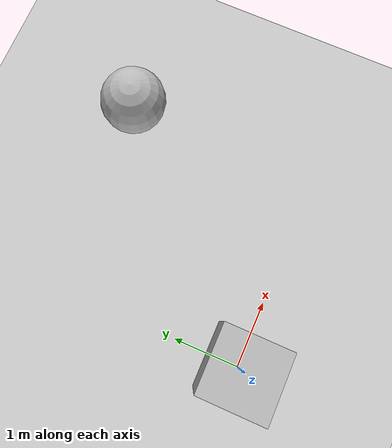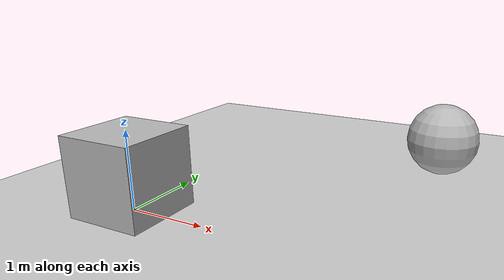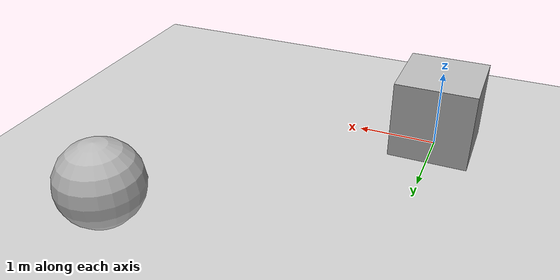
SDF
<?xml version="1.0"?>
<gazebo version="1.2">
    <world name="default">
        <include>
            <uri>model://ground_plane</uri>
        </include>

        <include>
            <uri>model://sun</uri>
        </include>

        <model name="box">
            <pose>0 0 0.5 0 0 0</pose>
            <link name="link">
                <collision name="collision">
                    <geometry>
                        <box>
                          <size>1 1 1</size>
                        </box>
                    </geometry>
                </collision>
                <visual name="visual">
                    <geometry>
                        <box>
                          <size>1 1 1</size>
                        </box>
                    </geometry>
                </visual>
            </link>
	    <plugin name="usbl_transceiver" filename="libtransceiverPlugin.so">
	      <namespace>USBL</namespace>
	      <transponder_device>transponder_manufacturer</transponder_device>
	      <transponder_ID>1</transponder_ID>
	      <transceiver_device>transceiver_manufacturer</transceiver_device>
	      <transceiver_ID>168</transceiver_ID>
	      <enable_ping_scheduler>false</enable_ping_scheduler>
          <transponder_attached_object>sphere</transponder_attached_object>
          <interrogation_mode>common</interrogation_mode>
          <sound_speed>1540.0</sound_speed>
          <ping_freq>2</ping_freq>
	    </plugin>
        </model>

        <model name="sphere">
            <pose>3 3 0.5 0 0 0</pose>
            <link name="link">
                <collision name="collision">
                    <geometry>
                        <sphere>
                            <radius>0.5</radius>
                        </sphere>
                    </geometry>
                </collision>

                <visual name="visual">
                    <geometry>
                        <sphere>
                            <radius>0.5</radius>
                        </sphere>
                    </geometry>
                </visual>
            </link>
	    <plugin name="usbl_transponder" filename="libtransponderPlugin.so">
	      <namespace>USBL</namespace>
	      <transponder_device>transponder_manufacturer</transponder_device>
	      <transponder_ID>1</transponder_ID>
	      <transceiver_device>transceiver_manufacturer</transceiver_device>
          <transceiver_ID>168</transceiver_ID>
          <sound_speed>1540.0</sound_speed>
	      <mu>0</mu>
	      <sigma>0.0</sigma>
	    </plugin>
        </model>
    </world>
</gazebo>
